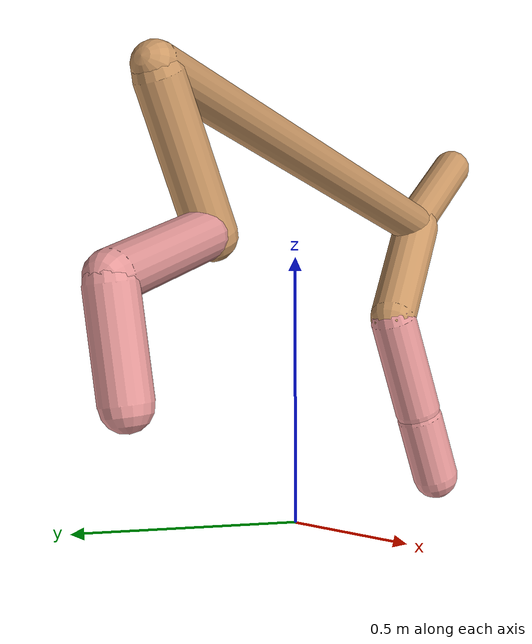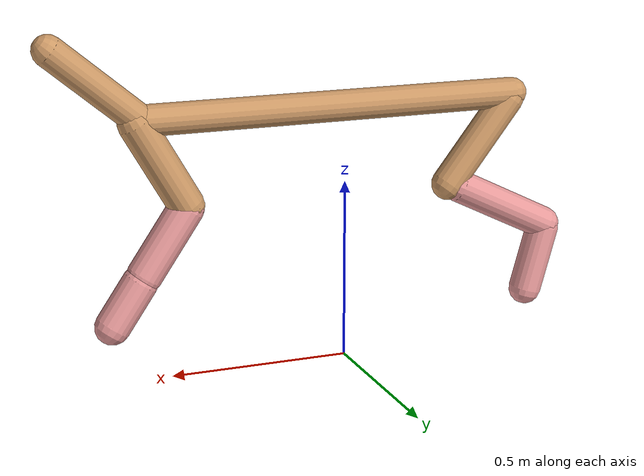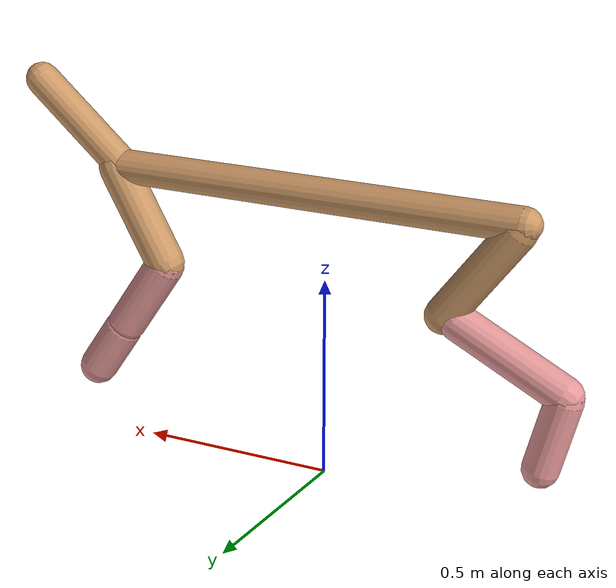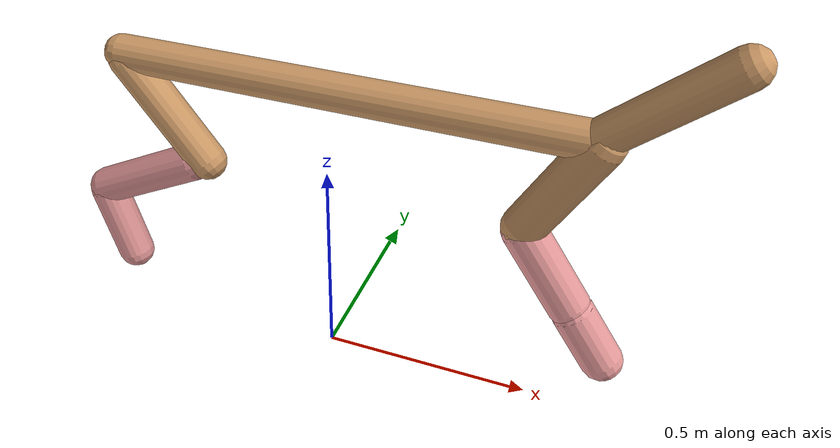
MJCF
<mujoco model="cheetah">
  <compiler angle="radian" coordinate="local" inertiafromgeom="true" settotalmass="14" />
  <default>
    <joint armature=".1" damping=".01" limited="true" solimplimit="0 .8 .03" solreflimit=".02 1" stiffness="8" />
    <geom conaffinity="0" condim="3" contype="1" friction="0.8 .1 .1" rgba="0.8 0.6 .4 1" solimp="0.0 0.8 0.01" solref="0.02 1" />
    <motor ctrllimited="true" ctrlrange="-1 1" />
  </default>
  <size nstack="300000" nuser_geom="1" />
  <option gravity="0 0 -9.81" timestep="0.01" />
  <worldbody>
    <body name="torso" pos="0.0 0.0 0.712411656666354">
      <joint armature="0" axis="1 0 0" damping="0" limited="false" name="ignorex" pos="0 0 0" stiffness="0" type="slide" />
      <joint armature="0" axis="0 0 1" damping="0" limited="false" name="ignorez" pos="0 0 0" stiffness="0" type="slide" />
      <joint armature="0" axis="0 1 0" damping="0" limited="false" name="ignorey" pos="0 0 0" stiffness="0" type="hinge" />
      <geom fromto="-0.5 0.0 0.0 0.586603554219629 0.0 0.0" name="torso" size="0.04248800144106328" type="capsule" />
      <geom axisangle="0 1 0 .87" name="head" pos="0.686603554219629 0.0 0.1" size="0.04230225166384266 0.15" type="capsule" />

      <body name="bthigh" pos="-.5 0 0">
        <joint axis="0 1 0" damping="6" name="bthigh" pos="0 0 0" range="-.52 1.05" stiffness="240" type="hinge" />
        <geom axisangle="0 1 0 -3.8" name="bthigh" pos="0.10092990719599149 0.0 -0.13120887935478892" size="0.04580733212181485 0.14652516120052653" type="capsule" />
        <body name="bshin" pos="0.16185981439198296 0.0 -0.25241775870957783">
          <joint axis="0 1 0" damping="4.5" name="bshin" pos="0 0 0" range="-.785 .785" stiffness="180" type="hinge" />
          <geom axisangle="0 1 0 -2.03" name="bshin" pos="-0.1414111851535266 0.0 -0.0707055925767633" rgba="0.9 0.6 0.6 1" size="0.04580733212181485 0.15157775296606193" type="capsule" />
          <body name="bfoot" pos="-0.2828223703070532 0.0 -0.1414111851535266">
            <joint axis="0 1 0" damping="3" name="bfoot" pos="0 0 0" range="-.4 .785" stiffness="120" type="hinge" />
            <geom axisangle="0 1 0 -.27" name="bfoot" pos="0.030292138358545658 0.0 -0.09794458069263097" rgba="0.9 0.6 0.6 1" size="0.04580733212181485 0.09498872519206548" type="capsule" />
            <inertial mass="10" />
          </body>
        </body>
      </body>
      <body name="fthigh" pos="0.5866035542196291 0.0 0.0">
        <joint axis="0 1 0" damping="4.5" name="fthigh" pos="0 0 0" range="-1.5 0.8" stiffness="180" type="hinge" />
        <geom axisangle="0 1 0 .52" name="fthigh" pos="-0.07028140830958486 0.0 -0.12048241424500261" size="0.04878657253266593 0.13355849273986764" type="capsule" />
        <body name="fshin" pos="-0.14056281661916972 0.0 -0.24096482849000522">
          <joint axis="0 1 0" damping="3" name="fshin" pos="0 0 0" range="-1.2 1.1" stiffness="120" type="hinge" />
          <geom axisangle="0 1 0 -.6" name="fshin" pos="0.06526061034360763 0.0 -0.09036084509114901" rgba="0.9 0.6 0.6 1" size="0.04878657253266593 0.10644511451448097" type="capsule" />
          <body name="ffoot" pos="0.13052122068721525 0.0 -0.18072169018229803">
            <joint axis="0 1 0" damping="1.5" name="ffoot" pos="0 0 0" range="-3.1 -0.3" stiffness="60" type="hinge" />
            <geom axisangle="0 1 0 -.6" name="ffoot" pos="0.045158952204619414 0.0 -0.07024725898496355" rgba="0.9 0.6 0.6 1" size="0.04878657253266593 0.07029394354729876" type="capsule" />
            <inertial mass="10" />
          </body>
        </body>
      </body>
    </body>
  </worldbody>
  <actuator>
    <motor gear="120" joint="bthigh" name="bthigh" />
    <motor gear="90" joint="bshin" name="bshin" />
    <motor gear="60" joint="bfoot" name="bfoot" />
    <motor gear="120" joint="fthigh" name="fthigh" />
    <motor gear="60" joint="fshin" name="fshin" />
    <motor gear="30" joint="ffoot" name="ffoot" />
  </actuator>
</mujoco>
